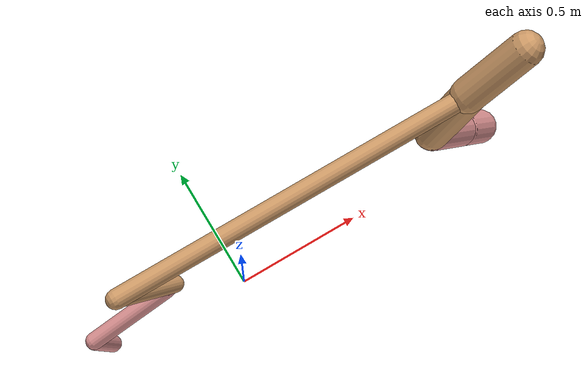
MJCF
<mujoco model="cheetah">
  <compiler angle="radian" coordinate="local" inertiafromgeom="true" settotalmass="14" />
  <default>
    <joint armature=".1" damping=".01" limited="true" solimplimit="0 .8 .03" solreflimit=".02 1" stiffness="8" />
    <geom conaffinity="0" condim="3" contype="1" friction="0.8 .1 .1" rgba="0.8 0.6 .4 1" solimp="0.0 0.8 0.01" solref="0.02 1" />
    <motor ctrllimited="true" ctrlrange="-1 1" />
  </default>
  <size nstack="300000" nuser_geom="1" />
  <option gravity="0 0 -9.81" timestep="0.01" />
  <worldbody>
    <body name="torso" pos="0.0 0.0 0.9424646768766766">
      <joint armature="0" axis="1 0 0" damping="0" limited="false" name="ignorex" pos="0 0 0" stiffness="0" type="slide" />
      <joint armature="0" axis="0 0 1" damping="0" limited="false" name="ignorez" pos="0 0 0" stiffness="0" type="slide" />
      <joint armature="0" axis="0 1 0" damping="0" limited="false" name="ignorey" pos="0 0 0" stiffness="0" type="hinge" />
      <geom fromto="-0.5 0.0 0.0 0.9786388314383125 0.0 0.0" name="torso" size="0.03825133006877849" type="capsule" />
      <geom axisangle="0 1 0 .87" name="head" pos="1.0786388314383126 0.0 0.1" size="0.06808623000084445 0.15" type="capsule" />

      <body name="bthigh" pos="-.5 0 0">
        <joint axis="0 1 0" damping="6" name="bthigh" pos="0 0 0" range="-.52 1.05" stiffness="240" type="hinge" />
        <geom axisangle="0 1 0 -3.8" name="bthigh" pos="0.11816595913522013 0.0 -0.15361574687578616" size="0.03307501951419979 0.17479438826026955" type="capsule" />
        <body name="bshin" pos="0.19633191827044022 0.0 -0.2972314937515723">
          <joint axis="0 1 0" damping="4.5" name="bshin" pos="0 0 0" range="-.785 .785" stiffness="180" type="hinge" />
          <geom axisangle="0 1 0 -2.03" name="bshin" pos="-0.16756783896468325 0.0 -0.08378391948234162" rgba="0.9 0.6 0.6 1" size="0.03307501951419979 0.18082178095889956" type="capsule" />
          <body name="bfoot" pos="-0.3351356779293665 0.0 -0.16756783896468325">
            <joint axis="0 1 0" damping="3" name="bfoot" pos="0 0 0" range="-.4 .785" stiffness="120" type="hinge" />
            <geom axisangle="0 1 0 -.27" name="bfoot" pos="0.03570699259673152 0.0 -0.11545260939609857" rgba="0.9 0.6 0.6 1" size="0.03307501951419979 0.11331498273424373" type="capsule" />
            <inertial mass="10" />
          </body>
        </body>
      </body>
      <body name="fthigh" pos="0.9786388314383125 0.0 0.0">
        <joint axis="0 1 0" damping="4.5" name="fthigh" pos="0 0 0" range="-1.5 0.8" stiffness="180" type="hinge" />
        <geom axisangle="0 1 0 .52" name="fthigh" pos="-0.07802818200753744 0.0 -0.13376259772720703" size="0.06595163976406213 0.1489330098395461" type="capsule" />
        <body name="fshin" pos="-0.1560563640150749 0.0 -0.26752519545441406">
          <joint axis="0 1 0" damping="3" name="fshin" pos="0 0 0" range="-1.2 1.1" stiffness="120" type="hinge" />
          <geom axisangle="0 1 0 -.6" name="fshin" pos="0.07243484538397388 0.0 -0.1002944013008869" rgba="0.9 0.6 0.6 1" size="0.06595163976406213 0.11869848904505177" type="capsule" />
          <body name="ffoot" pos="0.14486969076794776 0.0 -0.2005888026017738">
            <joint axis="0 1 0" damping="1.5" name="ffoot" pos="0 0 0" range="-3.1 -0.3" stiffness="60" type="hinge" />
            <geom axisangle="0 1 0 -.6" name="ffoot" pos="0.04953468211747748 0.0 -0.07705394996052053" rgba="0.9 0.6 0.6 1" size="0.06595163976406213 0.07838579465239269" type="capsule" />
            <inertial mass="10" />
          </body>
        </body>
      </body>
    </body>
  </worldbody>
  <actuator>
    <motor gear="120" joint="bthigh" name="bthigh" />
    <motor gear="90" joint="bshin" name="bshin" />
    <motor gear="60" joint="bfoot" name="bfoot" />
    <motor gear="120" joint="fthigh" name="fthigh" />
    <motor gear="60" joint="fshin" name="fshin" />
    <motor gear="30" joint="ffoot" name="ffoot" />
  </actuator>
</mujoco>
